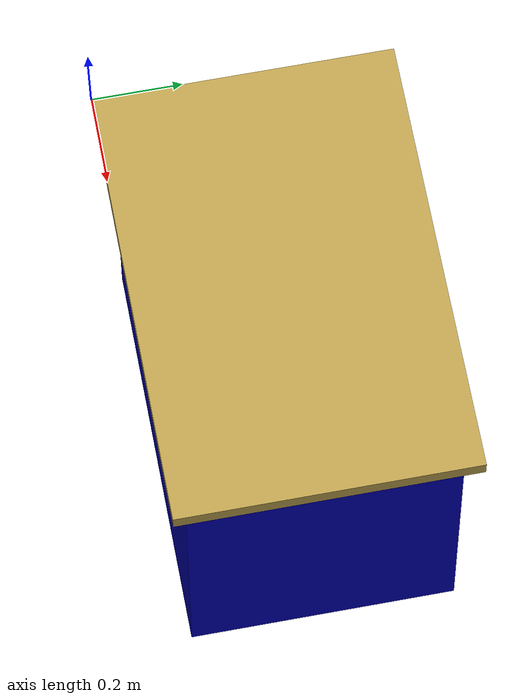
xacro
<?xml version="1.0"?>
<robot xmlns:xacro="http://ros.org/wiki/xacro"
       name="conveyor_system_stand_alone" >

  <xacro:include filename="$(find wheeled_table_description)/urdf/wheeled_table.urdf.xacro" />
  <xacro:wheeled_table/>

  <link name="world" />

  <joint name="wheeled_table_joint" type="fixed">
    <parent link="world" />
    <child link = "tabletop" />
    <origin xyz="0 0 0" rpy="0.0 0.0 0.0" />
  </joint>

</robot>

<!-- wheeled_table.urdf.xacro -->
<robot xmlns:xacro="http://ros.org/wiki/xacro">

  <xacro:macro name="wheeled_table">

  <link name="tabletop">
    <visual>
      <origin xyz="0.497588819111708 0.333513492980419 -0.02" rpy="0 0 0" />
      <geometry>
        <box size="0.995177638223416 0.667026985960838 0.04"/>
      </geometry>
      <material name="wood">
        <color rgba="0.713725490196078   0.607843137254902   0.298039215686275 1.0"/>
      </material>
    </visual>
  </link>

  <link name="table">
    <visual>
      <origin xyz="0 0 -0.4" rpy="0 0 0" />
      <geometry>
        <box size="0.9 0.6 0.8"/>
      </geometry>
      <material name="blue">
        <color rgba="0   0   0.7 1.0"/>
      </material>
    </visual>
  </link>

  <joint name="table_joint" type="fixed">
    <parent link="tabletop" />
    <child link = "table" />
    <origin xyz="0.497588819111708 0.333513492980419 -0.04" rpy="0 0 0" />
  </joint>

  </xacro:macro>
</robot>
